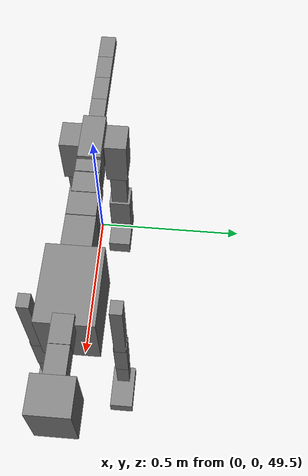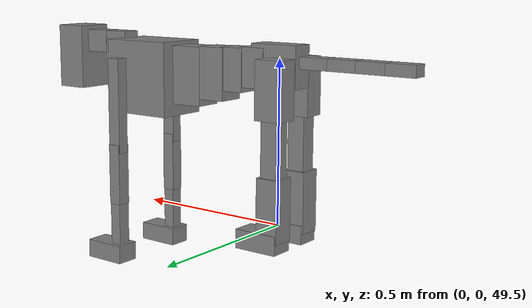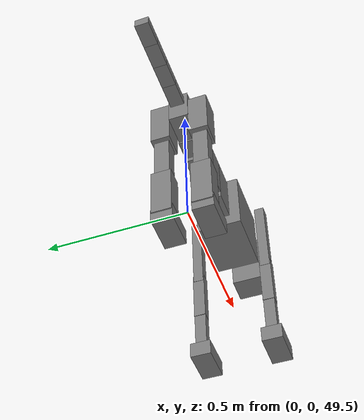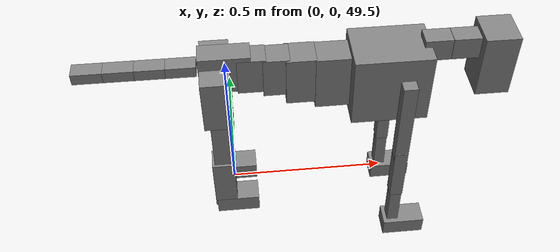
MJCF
<mujoco model="dog">

    <default>
        <joint armature="0.02" stiffness="1" damping="0.2" limited="true"/>
        <geom condim="3" friction="1 0.05 0.05" margin="0.01"/>
        <motor ctrllimited="true" ctrlrange="-1.0 1.0" forcelimited="true" gear="50"/>
    </default>

    <compiler inertiafromgeom="true" angle="radian"/>

    <option timestep="0.016" iterations="50" tolerance="1e-10" solver="Newton" jacobian="dense" cone="pyramidal"/>

    <size nconmax="20000" njmax="60000" nstack="5000000"/>
    <visual>
        <map force="0.1" zfar="30"/>
        <rgba haze="0.15 0.25 0.35 1"/>
        <quality shadowsize="2048"/>
        <global offwidth="800" offheight="800"/>
    </visual>

    <asset>
        <texture type="skybox" builtin="gradient" rgb1="0.3 0.5 0.7" rgb2="0 0 0" width="512" height="512"/>
        <texture name="texplane" type="2d" builtin="checker" rgb1=".2 .3 .4" rgb2=".1 0.15 0.2" width="512" height="512"
                 mark="cross" markrgb=".8 .8 .8"/>
        <texture name="texgeom" type="cube" builtin="flat" mark="cross" width="127" height="1278" rgb1="0.8 0.6 0.4"
                 rgb2="0.8 0.6 0.4" markrgb="1 1 1" random="0.01"/>

        <material name="matplane" reflectance="0.3" texture="texplane" texrepeat="1 1" texuniform="true"/>
        <material name="matgeom" texture="texgeom" texuniform="true" rgba="0.8 0.6 .4 1"/>
    </asset>

    <worldbody>
        <geom name="floor" pos="0 0 0" size="0 0 .25" type="plane" material="matplane" condim="3"/>

        <light directional="false" diffuse=".2 .2 .2" specular="0 0 0" pos="0 0 5" dir="0 0 -1" castshadow="false"/>
        <light mode="targetbodycom" target="torso" directional="false" diffuse=".8 .8 .8" specular="0.3 0.3 0.3"
               pos="0 0 4.0" dir="0 0 -1"/>

        <body name="root" pos="0 0 50">
            <freejoint name="root_1"/>
            <geom type="box" pos="0 0 -0.02" size="0.0774  0.0358  0.063" density="2030"/>

            <body name="spine1" pos="0.054 0 0">
                <joint name="spine1_y" axis="0 1 0" range="0 0.7" limited="true"/>
                <geom type="box" pos="0.02375 0 -0.03" size="0.04375  0.0375  0.05985" density="2030"/>

                <body name="spine2" pos="0.0612 0 0">
                    <joint name="spine2_y" axis="0 1 0" range="-0.15 0.15" limited="true"/>
                    <geom type="box" pos="0.03555  0  -0.04" size="0.04055  0.039  0.06615" density="2030"/>

                    <body name="spine3" pos="0.0730 0 0">
                        <joint name="spine3_y" axis="0 1 0" range="-0.15 0.15" limited="true"/>
                        <geom type="box" pos="0.03555  0  -0.057" size="0.04555  0.0445  0.081" density="2030"/>

                        <body name="spine4" pos="0.0780 0 0">
                            <joint name="spine4_y" axis="0 1 0" range="-0.15 0.15" limited="true"/>
                            <geom type="box" pos="0.05265  0  -0.07" size="0.05265  0.045  0.09135" density="2030"/>

                            <body name="torso" pos="0.1082 0 0">
                                <joint name="torso_y" axis="0 1 0" range="-0.15 0.15" limited="true"/>
                                <geom type="box" pos="0.11925  0  -0.085" size="0.11925  0.085  0.11745"
                                      density="2030"/>

                                <body name="neck1" pos="0.2160  0   0.0180">
                                    <joint name="neck1_y" axis="0 1 0" range="-1.2  -1" limited="true"/>
                                    <geom type="box" pos="0.0423  0  0" size="0.0423  0.03  0.036" density="2325"/>

                                    <body name="neck2" pos="0.0853  0  0">
                                        <joint name="neck2_y" axis="0 1 0" range="0.1  0" limited="true"/>
                                        <geom type="box" pos="0.0423  0  0" size="0.0423  0.03  0.036" density="2325"/>

                                        <body name="head" pos="0.0853  0  0">
                                            <joint name="head_y" axis="0 1 0" range="-0.3  -0.2" limited="true"/>
                                            <geom type="box" pos="0.0531  0  -0.055" size="0.0531  0.06  0.1044"
                                                  density="4030"/>

                                        </body>
                                    </body>
                                </body>

                                <body name="front_shoulder" pos="0.156  0   -0.0480">
                                    <joint name="front_shoulder_y" axis="0 1 0" range="-1 1.5" limited="true"/>
                                    <geom type="box" pos="0 0.13 -0.1242" size="0.0217  0.0185  0.1508" density="1158"/>
                                    <geom type="box" pos="0 -0.13 -0.1242" size="0.0217  0.0185  0.1508"
                                          density="1158"/>

                                    <body name="front_elbow" pos="0  0  -0.2484">
                                        <joint name="front_elbow_y" axis="0 1 0" range="-2 0" limited="true"/>
                                        <geom type="box" pos="0 0.13 -0.0969" size="0.0208  0.0212  0.0969"
                                              density="1081"/>
                                        <geom type="box" pos="0 -0.13 -0.0969" size="0.0208  0.0212  0.0969"
                                              density="1081"/>

                                        <body name="front_wrist" pos="0  0  -0.1938">
                                            <joint name="front_wrist_y" axis="0 1 0" range="-0.2 0" limited="true"/>
                                            <geom type="box" pos="0 0.13 -0.0736" size="0.0186  0.0207  0.0868"
                                                  density="1664"/>
                                            <geom type="box" pos="0 -0.13 -0.0736" size="0.0186  0.0207  0.0868"
                                                  density="1664"/>

                                            <body name="front_finger_end" pos="0  0  -0.1473">
                                                <joint name="front_finger_y" axis="0 1 0" range="-0.4 1"
                                                       limited="true"/>
                                                <geom type="box" pos="0.0375  0.13  -0.0141"
                                                      size="0.0687  0.0375  0.0291" density="1515"/>
                                                <geom type="box" pos="0.0375  -0.13  -0.0141"
                                                      size="0.0687  0.0375  0.0291" density="1515"/>

                                            </body>

                                        </body>
                                    </body>
                                </body>

                            </body>
                        </body>
                    </body>
                </body>
            </body>

            <body name="back_hip" pos="-0.03 0 -0.018">
                <joint name="back_hip_y" axis="0 1 0" range="-1.5 0.3" limited="true"/>
                <geom type="box" pos="0 0.07 -0.0650" size="0.0445  0.0349  0.0878" density="1154"/>
                <geom type="box" pos="0 -0.07 -0.0650" size="0.0445  0.0349  0.0878" density="1154"/>

                <body name="back_knee" pos="0  0  -0.1301">
                    <joint name="back_knee_y" axis="0 1 0" range="0 2.8" limited="true"/>
                    <geom type="box" pos="0 0.07 -0.0998" size="0.0273  0.0269  0.1153" density="1227"/>
                    <geom type="box" pos="0 -0.07 -0.0998" size="0.0273  0.0269  0.1153" density="1227"/>

                    <body name="back_ankle" pos="0  0  -0.1996">
                        <joint name="back_ankle_y" axis="0 1 0" range="-2.2 0" limited="true"/>
                        <geom type="box" pos="0 0.07 -0.0838" size="0.0357  0.0357  0.0950" density="1284"/>
                        <geom type="box" pos="0 -0.07 -0.0838" size="0.0357  0.0357  0.0950" density="1284"/>

                        <body name="back_toe_end" pos="0  0  -0.1676">
                            <joint name="back_toe_y" axis="0 1 0" range="-0.4 1" limited="true"/>
                            <geom type="box" pos="0.0376  0.07  -0.0143" size="0.0690  0.0376  0.0293" density="1515"/>
                            <geom type="box" pos="0.0376  -0.07  -0.0143" size="0.0690  0.0376  0.0293" density="1515"/>

                        </body>
                    </body>
                </body>
            </body>

            <body name="tail1" pos="-0.074 0 -0.006">
                <joint name="tail1_y" axis="0 1 0" range="-0.2 0.2" limited="true"/>
                <geom type="box" pos="-0.0536  0  0" size="0.045  0.025  0.0175" density="1587"/>

                <body name="tail2" pos="-0.09 0 0">
                    <joint name="tail2_y" axis="0 1 0" range="-0.2 0.2" limited="true"/>
                    <geom type="box" pos="-0.0536  0  0" size="0.045  0.025  0.0175" density="1587"/>

                    <body name="tail3" pos="-0.09 0 0">
                        <joint name="tail3_y" axis="0 1 0" range="-0.2 0.2" limited="true"/>
                        <geom type="box" pos="-0.0536  0  0" size="0.045  0.025  0.0175" density="1587"/>

                        <body name="tail4" pos="-0.09 0 0">
                            <joint name="tail4_y" axis="0 1 0" range="-0.2 0.2" limited="true"/>
                            <geom type="box" pos="-0.0536  0  0" size="0.045  0.025  0.0175" density="1587"/>

                        </body>
                    </body>
                </body>
            </body>
        </body>
    </worldbody>

    <actuator>
        <motor joint="spine1_y" forcerange="-150 150     "/>
        <motor joint="spine2_y" forcerange="-150 150     "/>
        <motor joint="spine3_y" forcerange="-150 150     "/>
        <motor joint="spine4_y" forcerange="-150 150     "/>
        <motor joint="torso_y" forcerange="-150 150     "/>
        <motor joint="neck1_y" forcerange="-100 100       "/>
        <motor joint="neck2_y" forcerange="-100 100       "/>
        <motor joint="head_y" forcerange="-150 150       "/>
        <motor joint="front_shoulder_y" forcerange="-100.64 122.92"/>
        <motor joint="front_elbow_y" forcerange="-150.16 104.16"/>
        <motor joint="front_wrist_y" forcerange="-110.49 54.92"/>
        <motor joint="front_finger_y" forcerange="-91.27 68.72"/>
        <motor joint="back_hip_y" forcerange="-337.99 327.49"/>
        <motor joint="back_knee_y" forcerange="-318.48 273.30"/>
        <motor joint="back_angle_y" forcerange="-249.84 222.05"/>
        <motor joint="back_toe_y" forcerange="-129.21 91.97"/>
        <motor joint="tail1_y" forcerange="-50 50     "/>
        <motor joint="tail2_y" forcerange="-50 50     "/>
        <motor joint="tail3_y" forcerange="-50 50     "/>
        <motor joint="tail4_y" forcerange="-50 50     "/>
    </actuator>
</mujoco>
